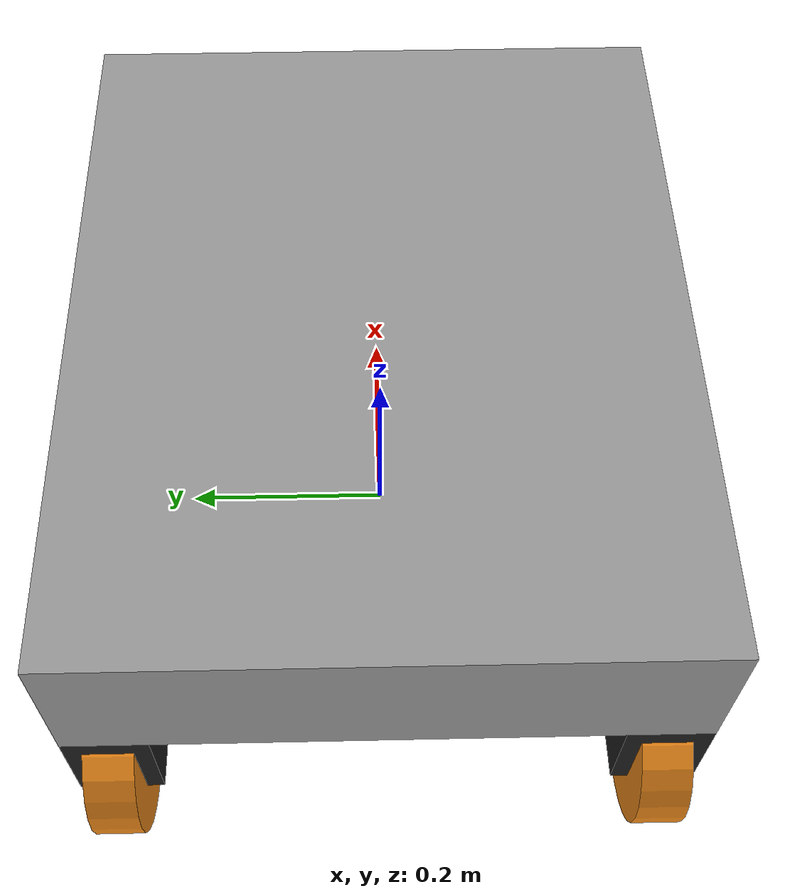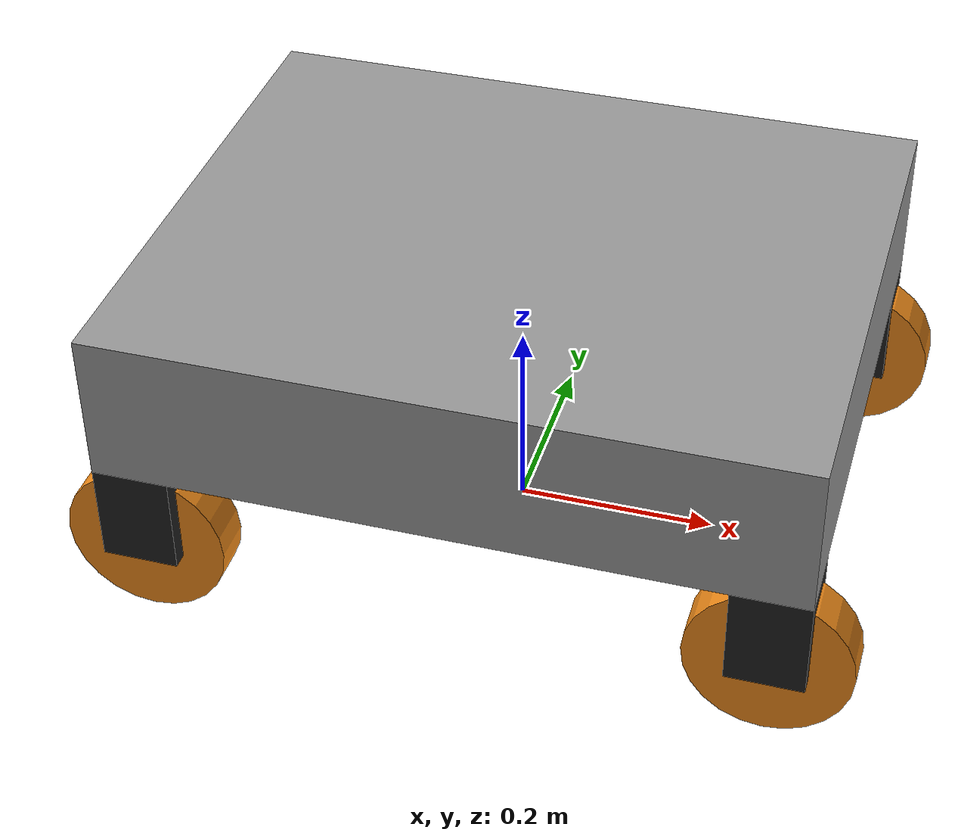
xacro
<?xml version="1.0"?>
<robot name="swerve_robot" xmlns:xacro="http://www.ros.org/wiki/xacro">

    <xacro:property name="base_length" value="0.679" />
    <xacro:property name="base_width" value="0.550" />
    <xacro:property name="base_height" value="0.15" />
    <xacro:property name="wheel_radius" value="0.08" />
    <xacro:property name="wheel_length" value="0.044" />
    <xacro:property name="caster_length" value="0.075" />
    <xacro:property name="caster_width" value="0.075" />
    <xacro:property name="caster_height" value="0.1" />

    <link name="base_footprint" />

    <link name="base_link">
        <visual>
            <geometry>
                 <box size="${base_length} ${base_width} ${base_height}"/>
            </geometry>
            <origin xyz="0 0 0" rpy="0 0 0" />
            <material name="grey" />
        </visual>
        <collision>
            <geometry>
                <box size="${base_length} ${base_width} ${base_height}"/>
            </geometry>
            <origin xyz="0 0 0" rpy="0 0 0" />
        </collision>
        <xacro:box_inertia m="20.0" x="${base_length}" y="${base_width}" z="${base_height}"
                           o_xyz="0 0 ${base_height}" o_rpy="0 0 0" />
    </link>

    <xacro:macro name="caster_link" params="prefix">
        <link name="${prefix}_caster_link">
            <visual>
                <geometry>
                    <box size="${caster_length} ${caster_width} ${caster_height}"/>
                </geometry>
                <origin xyz="0 0 0" rpy="0 0 0" />
                <material name="black" />
            </visual>
            <collision>
                <geometry>
                    <box size="${caster_length} ${caster_width} ${caster_height}"/>
                </geometry>
                <origin xyz="0 0 0" rpy="0 0 0" />
            </collision>
            <xacro:box_inertia m="10.0" x="${caster_length}" y="${caster_width}" z="${caster_height}"
                            o_xyz="0 0 ${caster_height}" o_rpy="0 0 0" />
        </link>
    </xacro:macro>

    <xacro:caster_link prefix="front_right" />
    <xacro:caster_link prefix="front_left" />
    <xacro:caster_link prefix="back_right" />
    <xacro:caster_link prefix="back_left" />

    <xacro:macro name="wheel_link" params="prefix">
        <link name="${prefix}_wheel_link">
            <visual>
                <geometry>
                    <cylinder radius="${wheel_radius}" length="${wheel_length}" />
                </geometry>
                <origin xyz="0 0 0" rpy="${pi / 2.0} 0 0" />
                <material name="orange" />
            </visual>
            <collision>
                <geometry>
                    <cylinder radius="${wheel_radius}" length="${wheel_length}" />
                </geometry>
                <origin xyz="0 0 0" rpy="${pi / 2.0} 0 0" />
            </collision>
            <xacro:cylinder_inertia m="10.0" r="${wheel_radius}" l="${wheel_length}"
                                    o_xyz="0 0 0" o_rpy="${pi / 2.0} 0 0" />
        </link>
    </xacro:macro>

    <xacro:wheel_link prefix="front_right" />
    <xacro:wheel_link prefix="front_left" />
    <xacro:wheel_link prefix="back_right" />
    <xacro:wheel_link prefix="back_left" />

    <joint name="base_joint" type="fixed">
        <parent link="base_footprint" />
        <child link="base_link" />
        <origin xyz="0 0 ${base_height / 2 + wheel_radius * 2 + (caster_height / 2 - wheel_radius / 2)}" rpy="0 0 0"/>
    </joint>

    <joint name="base_frontleft_caster_joint" type="continuous">
        <parent link="base_link" />
        <child link="front_left_caster_link" />
        <origin xyz="${base_length / 2 - caster_length / 2} ${base_width / 2 - caster_width / 2} ${- base_height / 2 - caster_height / 2}" rpy="0 0 0"/>
        <axis xyz="0 0 1" />
    </joint>

    <joint name="base_frontright_caster_joint" type="continuous">
        <parent link="base_link" />
        <child link="front_right_caster_link" />
        <origin xyz="${base_length / 2 - caster_length / 2} ${-base_width / 2 + caster_width / 2} ${- base_height / 2 - caster_height / 2}" rpy="0 0 0"/>
        <axis xyz="0 0 1" />
    </joint>

    <joint name="base_backleft_caster_joint" type="continuous">
        <parent link="base_link" />
        <child link="back_left_caster_link" />
        <origin xyz="${-base_length / 2 + caster_length / 2} ${base_width / 2 - caster_width / 2} ${- base_height / 2 - caster_height / 2}" rpy="0 0 0"/>
        <axis xyz="0 0 1" />
    </joint>

    <joint name="base_backright_caster_joint" type="continuous">
        <parent link="base_link" />
        <child link="back_right_caster_link" />
        <origin xyz="${-base_length / 2 + caster_length / 2} ${-base_width / 2 + caster_width / 2} ${- base_height / 2 - caster_height / 2}" rpy="0 0 0"/>
        <axis xyz="0 0 1" />
    </joint>

    <joint name="frontleft_caster_wheel_joint" type="continuous">
        <parent link="front_left_caster_link" />
        <child link="front_left_wheel_link" />
        <origin xyz="0 0 ${-wheel_radius / 2}" rpy="0 0 0"/>
        <axis xyz="0 1 0" />
    </joint>

    <joint name="frontright_caster_wheel_joint" type="continuous">
        <parent link="front_right_caster_link" />
        <child link="front_right_wheel_link" />
        <origin xyz="0 0 ${-wheel_radius / 2}" rpy="0 0 0"/>
        <axis xyz="0 1 0" />
    </joint>

    <joint name="backleft_caster_wheel_joint" type="continuous">
        <parent link="back_left_caster_link" />
        <child link="back_left_wheel_link" />
        <origin xyz="0 0 ${-wheel_radius / 2}" rpy="0 0 0"/>
        <axis xyz="0 1 0" />
    </joint>

    <joint name="backright_caster_wheel_joint" type="continuous">
        <parent link="back_right_caster_link" />
        <child link="back_right_wheel_link" />
        <origin xyz="0 0 ${-wheel_radius / 2}" rpy="0 0 0"/>
        <axis xyz="0 1 0" />
    </joint>

</robot>
